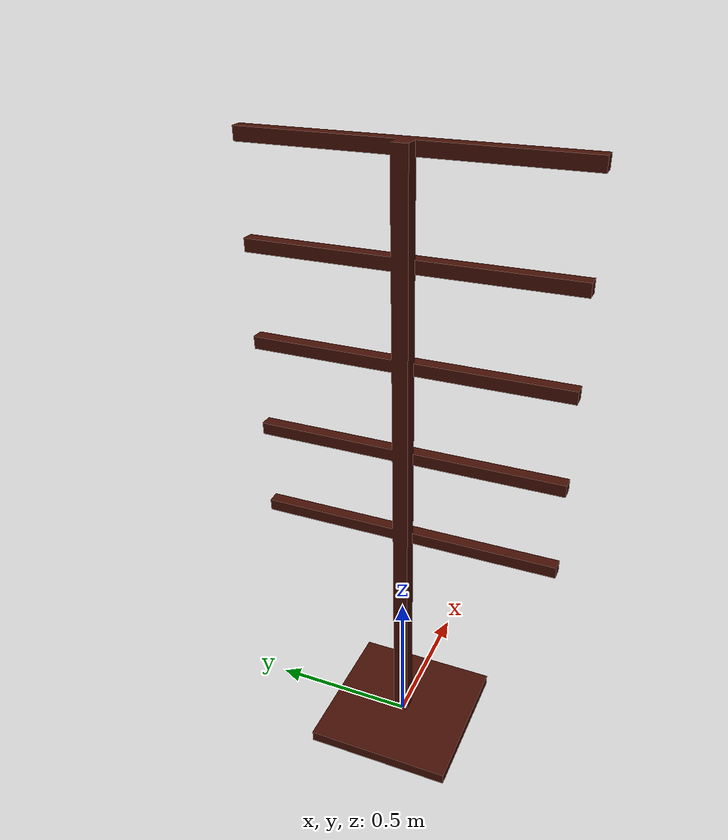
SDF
<sdf version="1.6">
 <world name="2D_1_1_1_0">
  <light name="sun" type="directional">
   <pose>0 0 10 0 -0 0</pose>
   <diffuse>1 1 1 1</diffuse>
   <specular>0.2 0.2 0.2 1</specular>
   <attenuation>
    <range>1000</range>
    <constant>0.9</constant>
    <linear>0.01</linear>
    <quadratic>0.001</quadratic>
   </attenuation>
   <direction>-0.5 -0.5 -1</direction>
  </light>
  <physics name="default_physics" default="0" type="ode">
   <max_step_size>0.001</max_step_size>
   <real_time_factor>1</real_time_factor>
   <real_time_update_rate>1000</real_time_update_rate>
  </physics>
  <scene><ambient>1 1 1 1</ambient><background>0.0 0.0 0.0 1</background><shadows>0</shadows></scene>
  <spherical_coordinates>
   <surface_model>EARTH_WGS84</surface_model>
   <latitude_deg>0.00</latitude_deg>
   <longitude_deg>0.00</longitude_deg>
   <elevation>0</elevation>
   <heading_deg>0</heading_deg>
  </spherical_coordinates>
  <gravity>0 0 -9.8</gravity>
  <magnetic_field>6e-06 2.3e-05 -4.2e-05</magnetic_field>
  <atmosphere type="adiabatic"/>
  <model name="digital_tree">
   <link name="digital_tree_link">
    <inertial>
     <mass>50</mass>
     <inertia><ixx>1000</ixx><ixy>1000</ixy><ixz>1000</ixz><iyy>1000</iyy><iyz>1000</iyz><izz>1000</izz></inertia>
    </inertial>
    <collision name="digital_tree_link_collision">
     <geometry><mesh><scale>1 1 1</scale><uri>model://digital_tree/meshes/digital_tree.dae</uri></mesh></geometry>
    </collision>
    <visual name="digital_tree_link_visual">
     <geometry><mesh><scale>1 1 1</scale><uri>model://digital_tree/meshes/digital_tree.dae</uri></mesh></geometry>
    </visual>
   </link>
   <static>1</static>
   <pose>0 0 0 0 0 1.57</pose>
  </model>
 </world>
</sdf>
